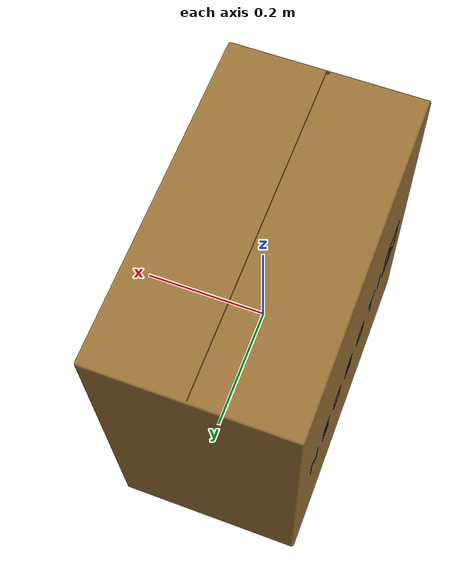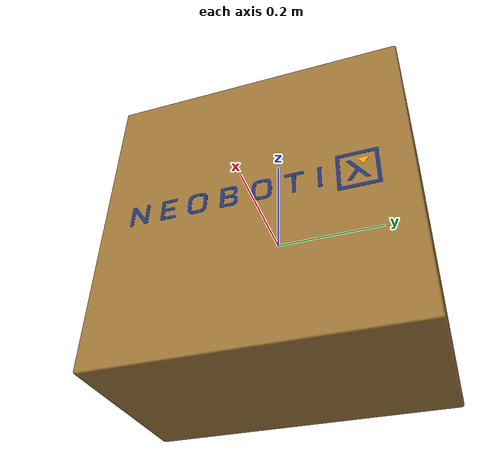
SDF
<sdf version='1.6'>
  <model name='neobotix_box'>
    <link name='link_1'>
	    <inertial>
        <mass>2</mass>
        <pose frame=''>0 0 0 0 0 0</pose>
        <inertia>
          <ixx>0.1</ixx>
          <ixy>0</ixy>
          <ixz>0</ixz>
          <iyy>0.1</iyy>
          <iyz>0</iyz>
          <izz>0.1</izz>
        </inertia>
      </inertial>
      <pose frame=''>0 0 0 0 -0 0</pose>
      <visual name='visual'>
        <geometry>
          <mesh>
            <uri>meshes/model.dae</uri>
          </mesh>
        </geometry>
		    <meta><layer>1</layer></meta>
      </visual>
      <collision name='collision_0'>
        <laser_retro>0</laser_retro>
        <max_contacts>1</max_contacts>
        <pose frame=''>0 0 0 0 -0 0</pose>
        <geometry>
          <mesh>
            <uri>meshes/model.dae</uri>
          </mesh>
        </geometry>
		    <surface>
          <friction>
            <ode>
              <mu>0.04</mu>
              <mu2>0.04</mu2>
              <fdir1>0 0 0</fdir1>
              <slip1>0</slip1>
              <slip2>0</slip2>
            </ode>
            <torsional>
              <coefficient>1</coefficient>
              <patch_radius>0</patch_radius>
              <surface_radius>0</surface_radius>
              <use_patch_radius>0</use_patch_radius>
              <ode>
                <slip>0</slip>
              </ode>
            </torsional>
          </friction>
        </surface>
      </collision>
    </link>
    <static>true</static>
  </model>
</sdf>
